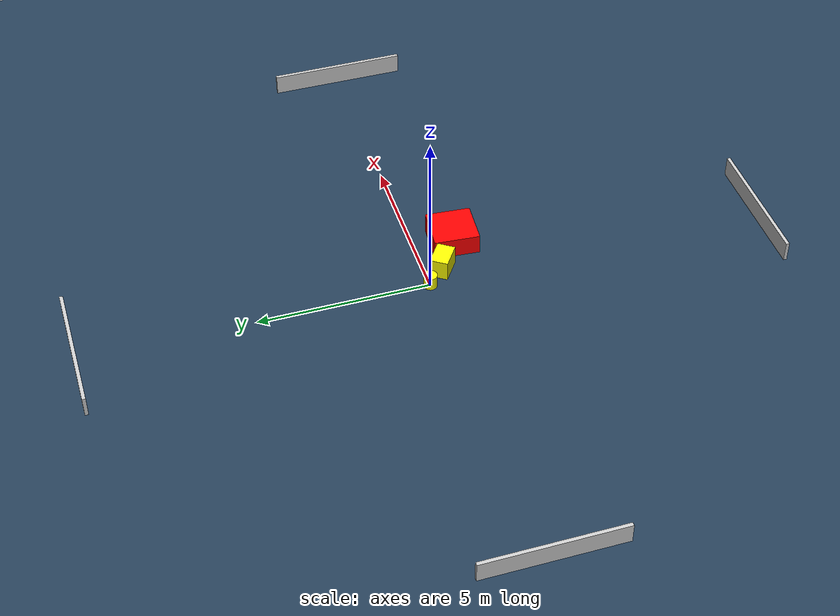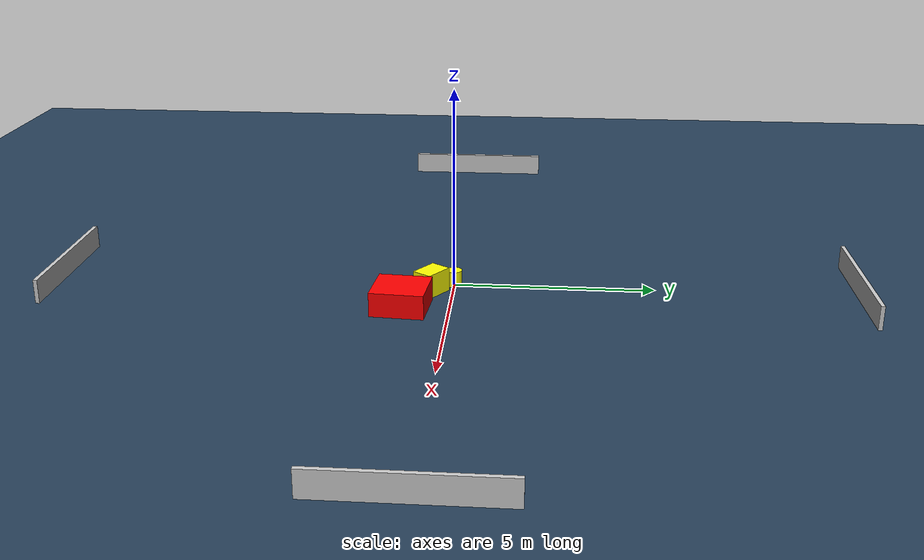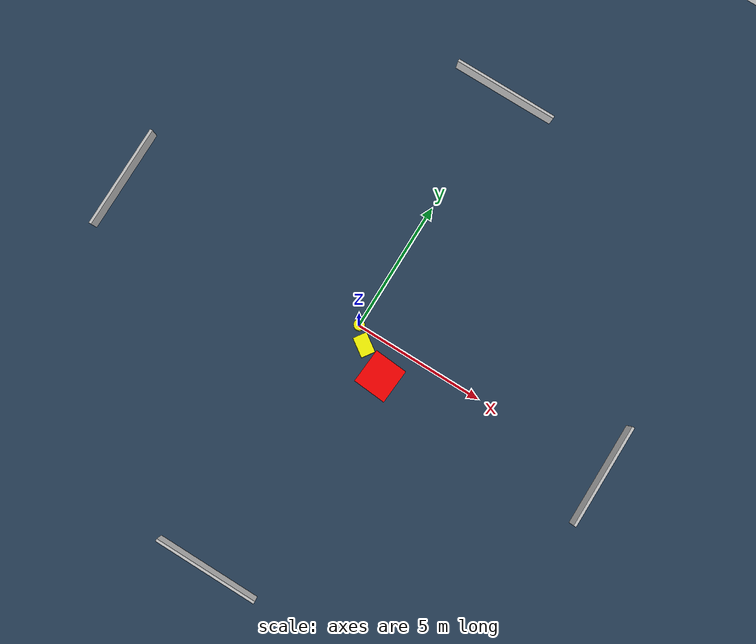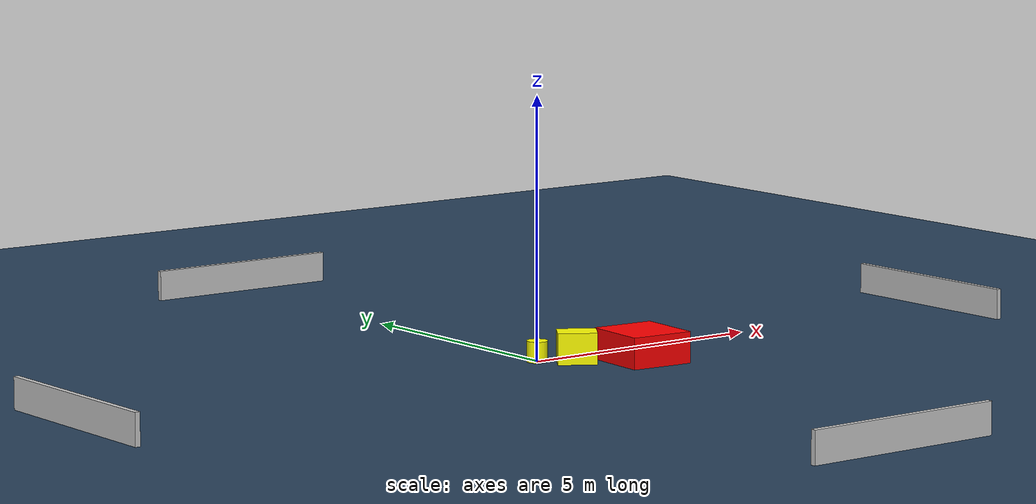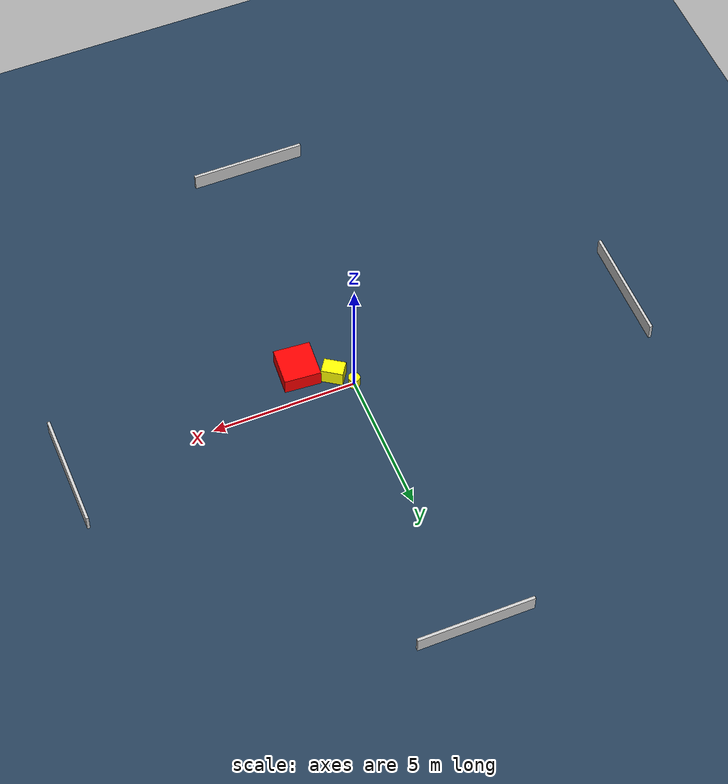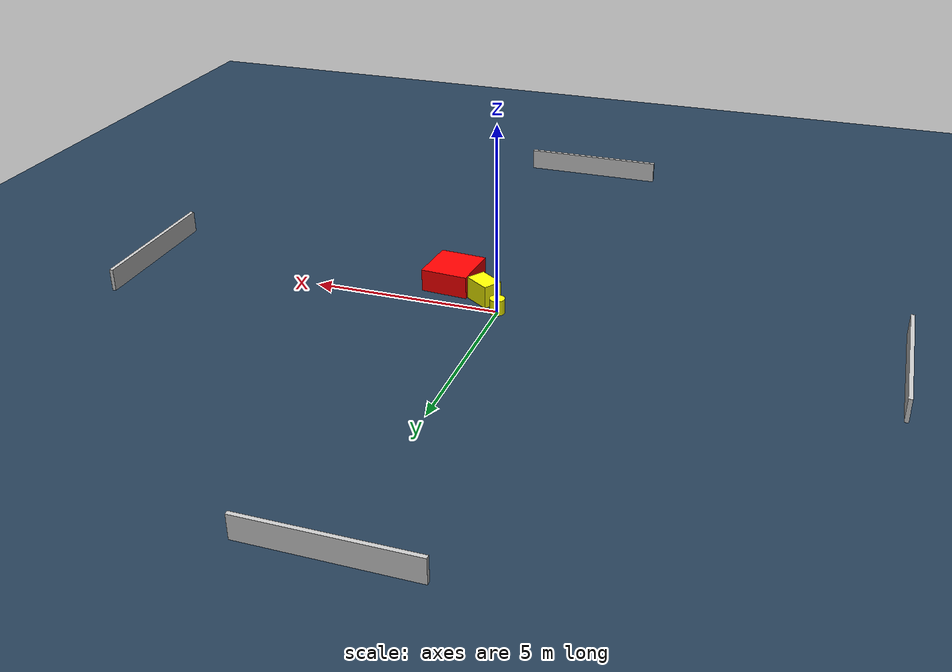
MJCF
<?xml version="1.0" ?>
<mujoco model="generated_environment">
  <option timestep="0.01" integrator="RK4" cone="elliptic"/>
  <default>
    <geom density="1"/>
  </default>
  <asset>
    <texture builtin="gradient" height="3072" name="skybox" rgb1="0.3 0.5 0.7" rgb2="0 0 0" type="skybox" width="512"/>
    <texture builtin="checker" height="300" name="groundplane" rgb1="0.2 0.3 0.4" rgb2="0.1 0.2 0.3" type="2d" width="300"/>
    <material name="groundplane" reflectance="0.2" texrepeat="5 5" texture="groundplane"/>
  </asset>
  <worldbody>
    <light dir="0 0 -1" directional="true" pos="0 0 1.5"/>
    <geom condim="3" friction="0.5 0.005 0.001" material="groundplane" name="floor" pos="0 0 0" size="0 0 0.05" type="plane"/>
    <body name="walls">
      <geom name="wall_1" condim="4" pos="-10.0 0.0 0.3" rgba="0.800000011920929 0.800000011920929 0.800000011920929 1.0" size="0.05 2.0 0.3" type="box"/>
      <geom name="wall_2" condim="4" pos="10.0 0.0 0.3" rgba="0.800000011920929 0.800000011920929 0.800000011920929 1.0" size="0.05 2.0 0.3" type="box"/>
      <geom name="wall_3" condim="4" pos="0.0 -10.0 0.3" rgba="0.800000011920929 0.800000011920929 0.800000011920929 1.0" size="2.0 0.05 0.3" type="box"/>
      <geom name="wall_4" condim="4" pos="0.0 10.0 0.3" rgba="0.800000011920929 0.800000011920929 0.800000011920929 1.0" size="2.0 0.05 0.3" type="box"/>
    </body>
    <body name="robot">
      <joint name="joint_x" type="slide" pos="0 0 0" axis="1 0 0"/>
      <joint name="joint_y" type="slide" pos="0 0 0" axis="0 1 0"/>
      <geom name="robot" type="cylinder" pos="0.0 0.0 0.2" size="0.2 0.2 0.0" mass="5.0" friction="1.0 0.005 0.0001" condim="4" rgba="1.0 1.0 0.0 1.0"/>
    </body>
    <body name="obstacle_1_movable">
      <geom name="obstacle_1_movable" condim="4" pos="0.5273573186951334 -0.5246626415894742 0.3" euler="0 0 145.4782348996077" friction="0.0 0.005 0.001" rgba="1.0 1.0 0.0 1.0" size="0.374756742776852 0.26199994855407405 0.3" type="box" mass="0.1"/>
      <joint type="free"/>
    </body>
    <body name="obstacle_2_static">
      <geom name="obstacle_2_static" condim="4" pos="1.5873783364063958 -1.1547625492379543 0.3" euler="0 0 265.6997186225055" friction="0.0 0.005 0.001" rgba="1.0 0.0 0.0 1.0" size="0.65921334361672 0.6323855631550204 0.3" type="box"/>
    </body>
  </worldbody>
  <actuator>
    <motor name="actuator_x" joint="joint_x" gear="1" ctrlrange="-1 1"/>
    <motor name="actuator_y" joint="joint_y" gear="1" ctrlrange="-1 1"/>
  </actuator>
</mujoco>
